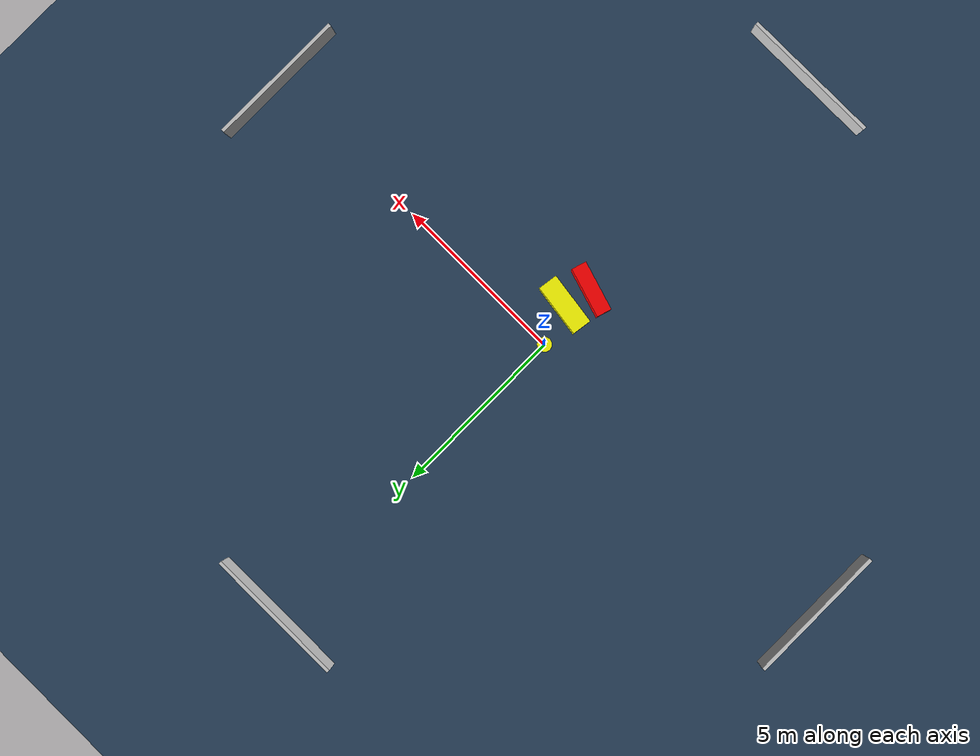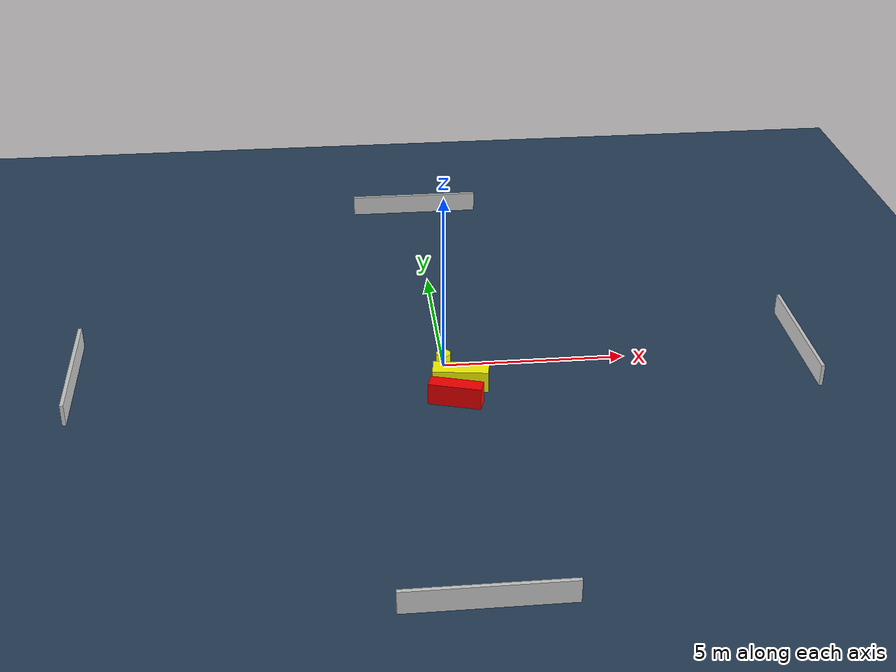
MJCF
<?xml version="1.0" ?>
<mujoco model="generated_environment">
  <option timestep="0.01" integrator="RK4" cone="elliptic"/>
  <default>
    <geom density="1"/>
  </default>
  <asset>
    <texture builtin="gradient" height="3072" name="skybox" rgb1="0.3 0.5 0.7" rgb2="0 0 0" type="skybox" width="512"/>
    <texture builtin="checker" height="300" name="groundplane" rgb1="0.2 0.3 0.4" rgb2="0.1 0.2 0.3" type="2d" width="300"/>
    <material name="groundplane" reflectance="0.2" texrepeat="5 5" texture="groundplane"/>
  </asset>
  <worldbody>
    <light dir="0 0 -1" directional="true" pos="0 0 1.5"/>
    <geom condim="3" friction="0.5 0.005 0.001" material="groundplane" name="floor" pos="0 0 0" size="0 0 0.05" type="plane"/>
    <body name="walls">
      <geom name="wall_1" condim="4" pos="-10.0 0.0 0.3" rgba="0.800000011920929 0.800000011920929 0.800000011920929 1.0" size="0.05 2.0 0.3" type="box"/>
      <geom name="wall_2" condim="4" pos="10.0 0.0 0.3" rgba="0.800000011920929 0.800000011920929 0.800000011920929 1.0" size="0.05 2.0 0.3" type="box"/>
      <geom name="wall_3" condim="4" pos="0.0 -10.0 0.3" rgba="0.800000011920929 0.800000011920929 0.800000011920929 1.0" size="2.0 0.05 0.3" type="box"/>
      <geom name="wall_4" condim="4" pos="0.0 10.0 0.3" rgba="0.800000011920929 0.800000011920929 0.800000011920929 1.0" size="2.0 0.05 0.3" type="box"/>
    </body>
    <body name="robot">
      <joint name="joint_x" type="slide" pos="0 0 0" axis="1 0 0"/>
      <joint name="joint_y" type="slide" pos="0 0 0" axis="0 1 0"/>
      <geom name="robot" type="cylinder" pos="0.0 0.0 0.2" size="0.2 0.2 0.0" mass="5.0" friction="1.0 0.005 0.0001" condim="4" rgba="1.0 1.0 0.0 1.0"/>
    </body>
    <body name="obstacle_1_movable">
      <geom name="obstacle_1_movable" condim="4" pos="0.35436860887123467 -1.1115964918112338 0.3" euler="0 0 171.8141246631749" friction="0.0 0.005 0.001" rgba="1.0 1.0 0.0 1.0" size="0.748802808402792 0.27450862967074635 0.3" type="box" mass="0.1"/>
      <joint type="free"/>
    </body>
    <body name="obstacle_2_static">
      <geom name="obstacle_2_static" condim="4" pos="0.1413991500568904 -1.896435609694097 0.3" euler="0 0 252.70918003854456" friction="0.0 0.005 0.001" rgba="1.0 0.0 0.0 1.0" size="0.21168774796023151 0.7097272135293606 0.3" type="box"/>
    </body>
  </worldbody>
  <actuator>
    <motor name="actuator_x" joint="joint_x" gear="1" ctrlrange="-1 1"/>
    <motor name="actuator_y" joint="joint_y" gear="1" ctrlrange="-1 1"/>
  </actuator>
</mujoco>
